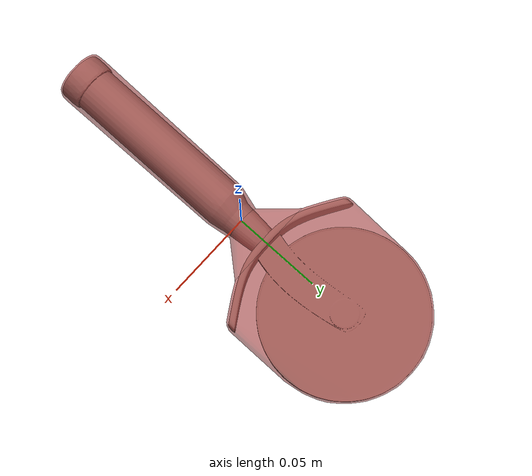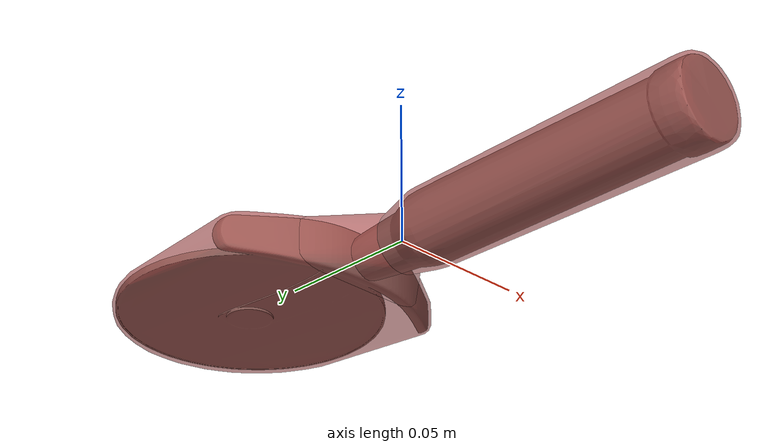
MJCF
<mujoco model="model">
  <option timestep="0.002" gravity="0.0 0.0 -9.81"/>
  <compiler angle="radian"/>
  <asset>
    <mesh file="visual/PizzaCutter005.obj" name="PizzaCutter005_vis"/>
    <mesh file="visual/Prop.obj" name="PizzaCutter005_Prop_vis"/>
    <texture file="visual/T_BC001.png" name="PizzaCutter005_material" type="2d"/>
    <material name="PizzaCutter005_material" rgba="1 1 1 1.0" texture="PizzaCutter005_material" shininess="0.141421377658844" specular="0.3103448502657381"/>
    <texture file="visual/T_BC001.png" name="PizzaCutter005_Prop_material" type="2d"/>
    <material name="PizzaCutter005_Prop_material" rgba="1 1 1 1.0" texture="PizzaCutter005_Prop_material" shininess="1" specular="2"/>
    <mesh file="collision/collision_mesh_collision_0.obj" name="PizzaCutter005_collision_mesh_0"/>
    <mesh file="collision/collision_mesh_collision_1.obj" name="PizzaCutter005_collision_mesh_1"/>
    <mesh file="collision/collision_mesh_collision_2.obj" name="PizzaCutter005_collision_mesh_2"/>
  </asset>
  <default>
    <default class="visual">
      <geom conaffinity="0" contype="0" group="1" type="mesh"/>
    </default>
    <default class="collision">
      <geom group="0" rgba="0.5 0 0 0.5" density="1.0" solref="0.004 1" solimp="0.998 0.998 0.001"/>
    </default>
    <default class="spawn">
      <geom group="0" rgba="1 1 1 0.5" contype="0" conaffinity="0"/>
      <site group="0" rgba="1 1 1 0.5"/>
    </default>
    <default class="region">
      <geom group="1" conaffinity="0" contype="0" rgba="0 1 0 0" mass="0"/>
    </default>
  </default>
  <worldbody>
    <body>
      <body name="object">
        <geom mesh="PizzaCutter005_vis" type="mesh" solimp="0.998 0.998 0.001" solref="0.001 1" friction="0.95 0.3 0.1" class="visual" material="PizzaCutter005_material"/>
        <body name="PizzaCutter005_Prop">
          <geom mesh="PizzaCutter005_Prop_vis" type="mesh" solimp="0.998 0.998 0.001" solref="0.001 1" friction="0.95 0.3 0.1" class="visual" material="PizzaCutter005_Prop_material"/>
        </body>
        <geom class="region" name="reg_bbox" type="box" pos="-8.760000000000018e-06 -0.00023317000000000476 1.9249999999998435e-06" size="0.0471718 0.11889954 0.014624385"/>
        <geom mesh="PizzaCutter005_collision_mesh_0" type="mesh" class="collision"/>
        <geom mesh="PizzaCutter005_collision_mesh_1" type="mesh" class="collision"/>
        <geom mesh="PizzaCutter005_collision_mesh_2" type="mesh" class="collision"/>
      </body>
    </body>
  </worldbody>
  <actuator/>
</mujoco>
